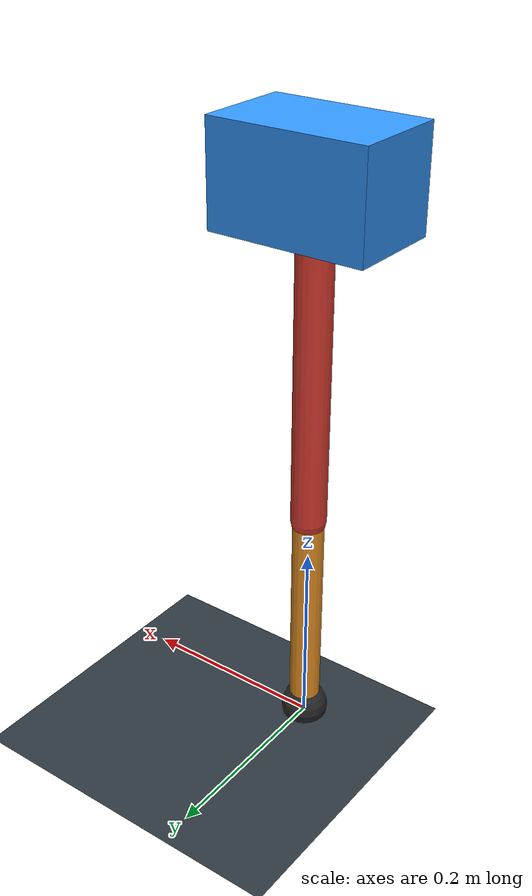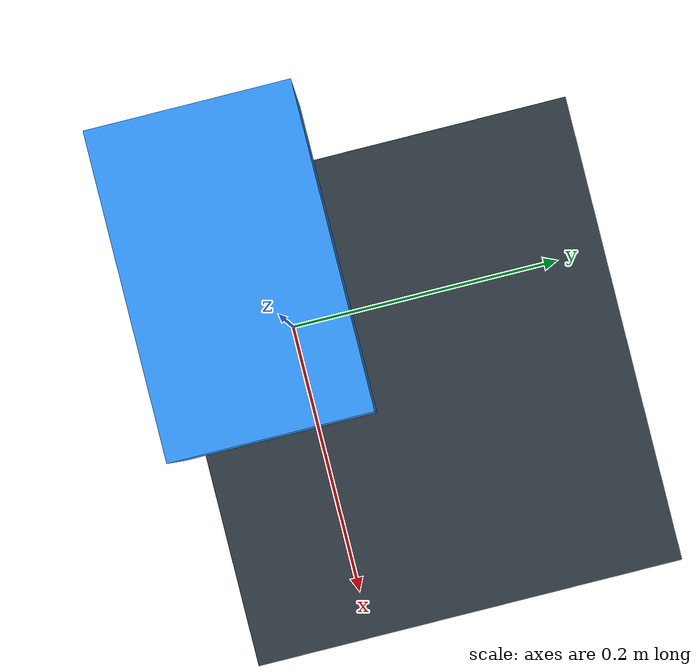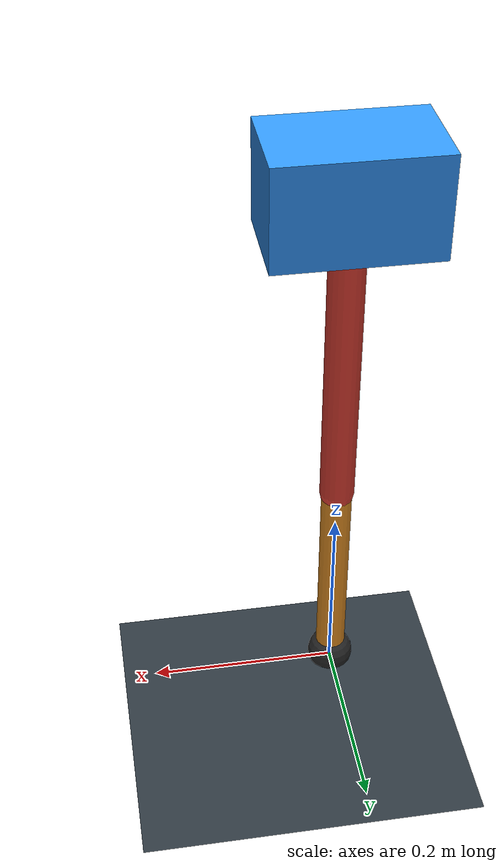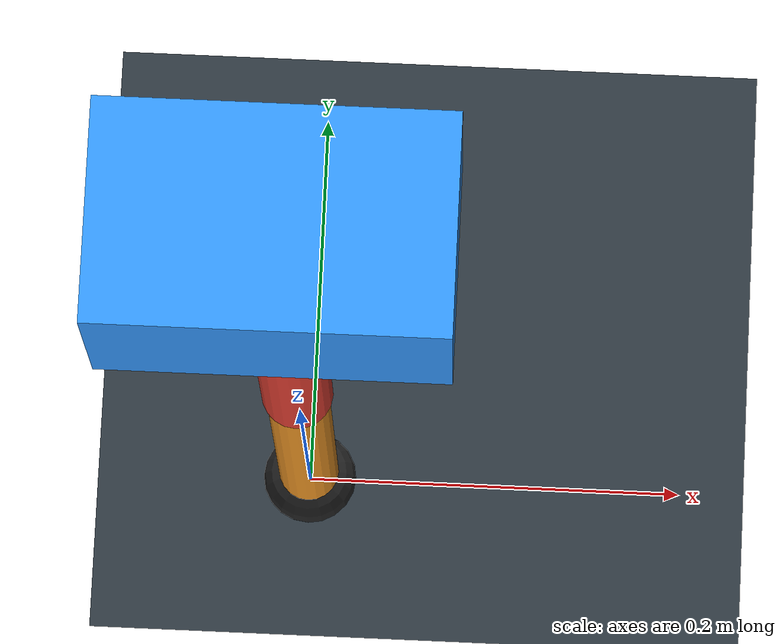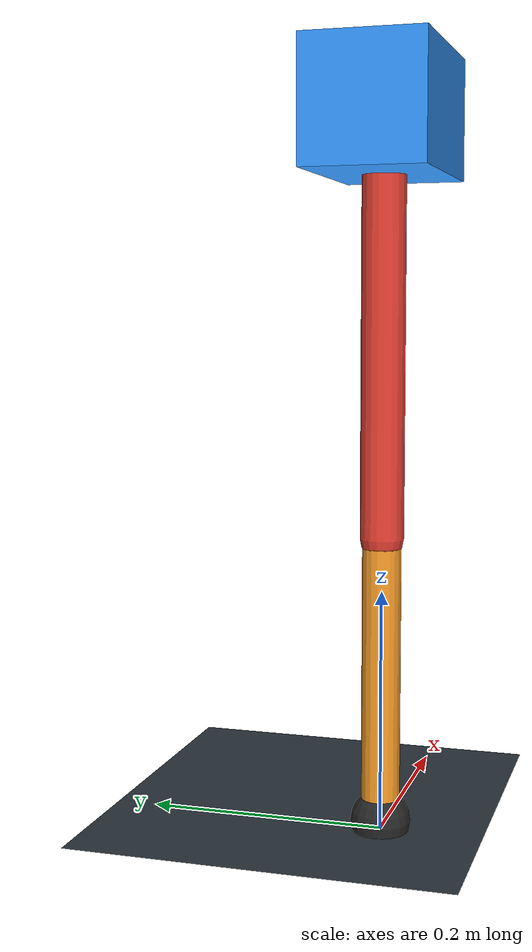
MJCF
<mujoco model="single_axis_two_bar">
  <compiler angle="radian" inertiafromgeom="true"/>
  <option timestep="0.001" integrator="implicitfast" gravity="0 0 -9.81"/>
  <default>
    <joint damping="0.08"/>
    <geom friction="1.2 0.01 0.0001" condim="3"/>
  </default>
  <worldbody>
    <geom name="floor" type="plane" size="5 5 0.1" rgba="0.18 0.22 0.25 1"/>
    <body name="carriage" pos="0 0 0.586636533394893">
      <joint name="pole_slide" type="slide" axis="0 0 1"/>
      <geom name="payload" type="box" size="0.08 0.05 0.05" mass="2.4008170459133593" rgba="0.2 0.6 1 1"/>
      <body name="thigh" pos="0 0 0">
        <joint name="hip" type="hinge" axis="0 1 0"/>
        <geom name="thigh_link" type="capsule" fromto="0 0 0 0 0 -0.34299924879117283" size="0.018" mass="0.2443914970989029" rgba="0.9 0.25 0.2 1"/>
        <body name="shank" pos="0 0 -0.34299924879117283">
          <joint name="knee" type="hinge" axis="0 1 0"/>
          <geom name="shank_link" type="capsule" fromto="0 0 0 0 0 -0.23600748666747967" size="0.016" mass="0.1681584528143698" rgba="0.95 0.6 0.15 1"/>
          <geom name="foot" type="sphere" pos="0 0 -0.23600748666747967" size="0.025" mass="0.03" rgba="0.15 0.15 0.15 1"/>
          <site name="toe" pos="0 0 -0.23600748666747967" size="0.008"/>
        </body>
      </body>
    </body>
  </worldbody>
  <actuator>
    <motor name="hip_motor" joint="hip" ctrlrange="-26.786575778712695 26.786575778712695"/>
    <motor name="knee_motor" joint="knee" ctrlrange="-104.95915171338468 104.95915171338468"/>
  </actuator>
</mujoco>
